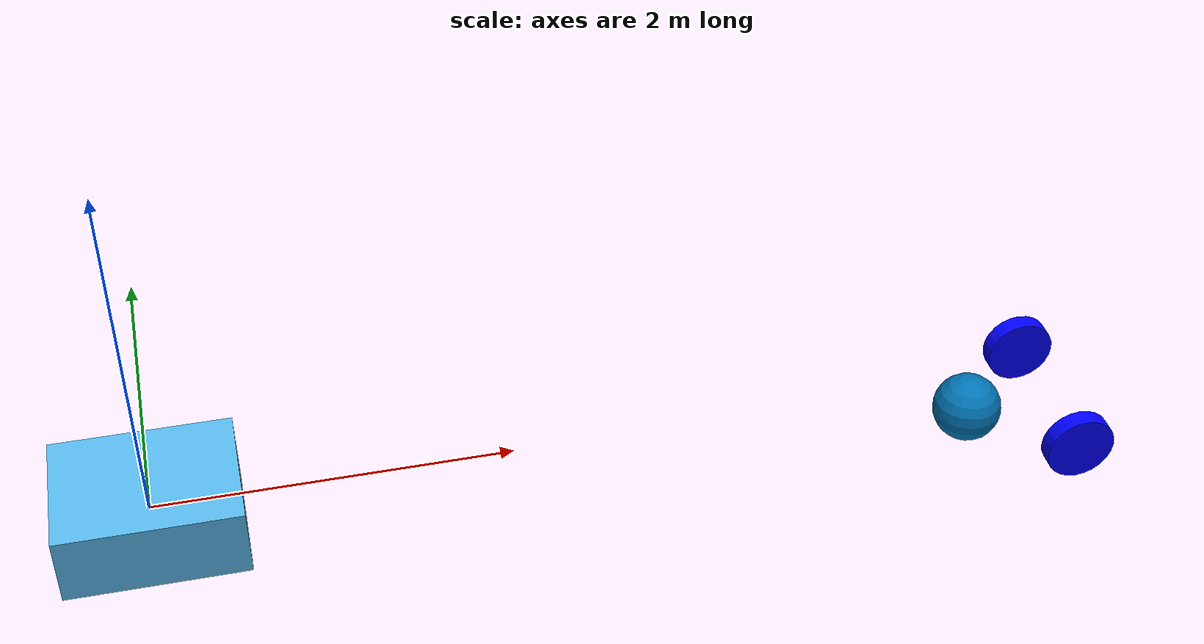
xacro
<?xml version="1.0"?>
<robot name="two_wheel_robot">

  <!-- Define the base link representing the main body of the robot -->
  <link name="base_link">
	<origin rpy="0 0 0" xyz="0 0 0.5" />
  </link>
  <link name="dummy_root_link">
    <!-- Add a small box as a visual representation -->
    <visual>
      <origin rpy="0 0 0" xyz="0 0 0" />
      <geometry>
        <box size="1 0.8 0.4"/>
      </geometry>

    </visual>
    <!-- Set mass and inertia properties to zero -->

  </link>
  <joint name="fixed_joint" type="fixed">
    <parent link="dummy_root_link"/>
    <child link="base_link"/>
    <origin xyz="5 0 0" rpy="0 0 0"/>
  </joint>

  <!-- Define the left wheel link -->
  <link name="left_wheel">
    <visual>
		<origin rpy="1.57 0 0" xyz="0 0 0" />

      <geometry>
        <cylinder radius="0.2" length="0.1"/>
      </geometry>
	  <material name="blue">
        <color rgba="0 0 1 1"/> <!-- Blue color -->
      </material>
    </visual>
  </link>

  <!-- Define the right wheel link -->
  <link name="right_wheel">
    <visual>
		<origin rpy="1.57 0 0" xyz="0 0 0" />

      <geometry>
        <cylinder radius="0.2" length="0.1"/>
      </geometry>
	  <material name="blue">
        <color rgba="0 0 1 1"/> <!-- Blue color -->
      </material>
    </visual>

  </link>

  <!-- Define the left wheel joint -->
  <joint name="left_wheel_joint" type="continuous">
	<parent link="base_link"/>
    <child link="left_wheel"/>
    <origin xyz="0.2 -0.45 -0.2" rpy="0 0 0"/>
    <axis xyz="0 1 0"/>
  </joint>

  <!-- Define the right wheel joint -->
  <joint name="right_wheel_joint" type="continuous">
    <parent link="base_link"/>
    <child link="right_wheel"/>
    <origin xyz="0.2 0.45 -0.2" rpy="0 0 0"/>
    <axis xyz="0 1 0"/>
  </joint>

  <link name="sphere">
    <visual>
      <origin rpy="0 0 0" xyz="0 0 0" />
      <geometry>
        <sphere radius="0.2"/>
      </geometry>
    </visual>
  </link>
  <joint name="sphere_joint" type="fixed">
    <parent link="base_link"/>
    <child link="sphere"/>
    <origin xyz="-0.3 0 -0.2" rpy="0 0 0"/>
  </joint>

</robot>
